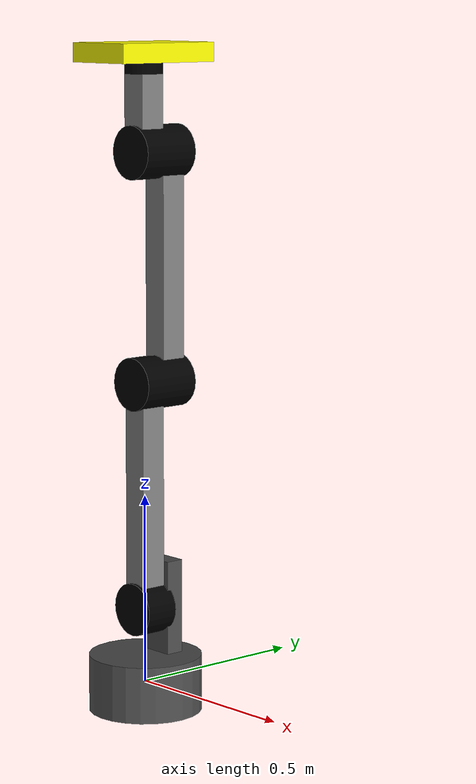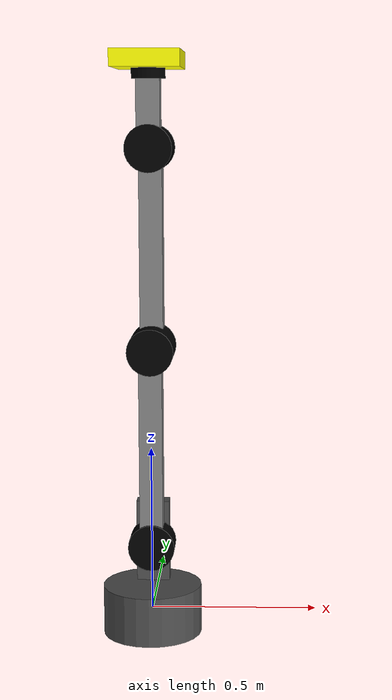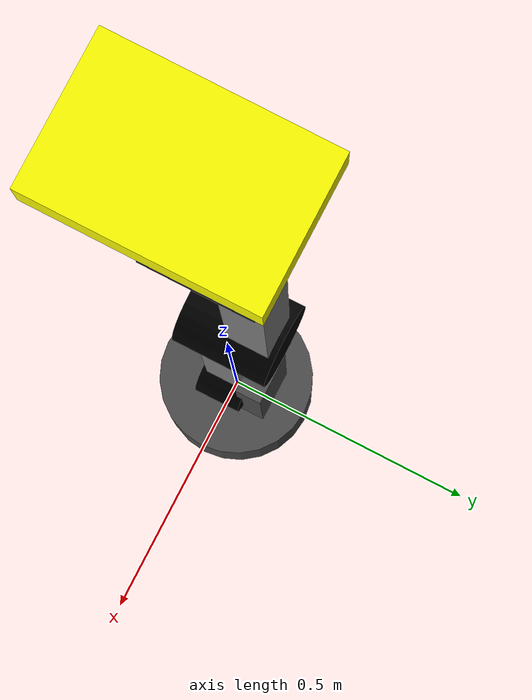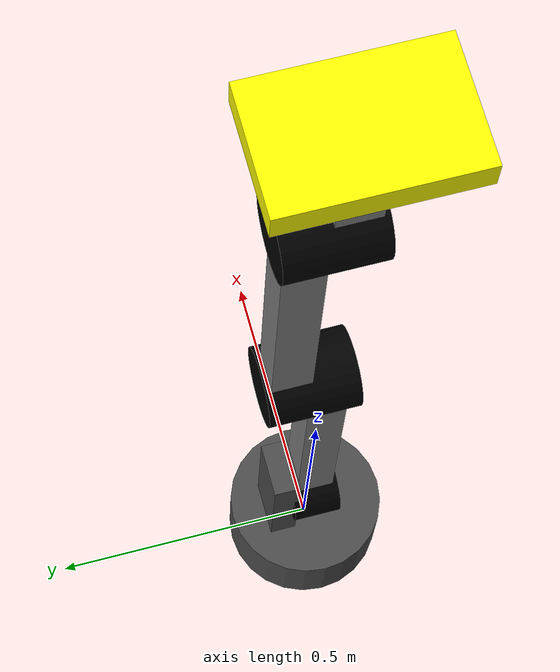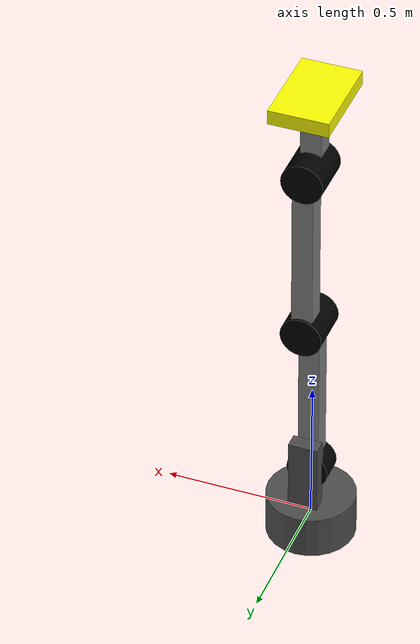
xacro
<?xml version="1.0"?>
<robot xmlns:xacro="http://www.ros.org/wiki/xacro" name="yuna_arm">

  <xacro:property name="pi" value="3.14159265" />

  <xacro:property name="base_mass" value="20" />
  <xacro:property name="link_one_mass" value="2" />
  <xacro:property name="link_two_mass" value="4" />
  <xacro:property name="link_three_mass" value="4" />
  <xacro:property name="link_four_mass" value="2" />
  <xacro:property name="wrist_mass" value="1" />
  <xacro:property name="gripper_mass" value="2" />

  <xacro:property name="base_len" value="0.15" />
  <xacro:property name="base_rad" value="0.15" />

  <xacro:property name="link_one_length" value="0.1" />
  <xacro:property name="link_one_width" value="0.05" />
  <xacro:property name="link_one_height" value="0.25" />

  <xacro:property name="link_two_length" value="0.07" />
  <xacro:property name="link_two_width" value="0.07" />
  <xacro:property name="link_two_height" value="0.6" />

  <xacro:property name="link_three_length" value="0.07" />
  <xacro:property name="link_three_width" value="0.07" />
  <xacro:property name="link_three_height" value="0.6" />

  <xacro:property name="link_four_length" value="0.07" />
  <xacro:property name="link_four_width" value="0.07" />
  <xacro:property name="link_four_height" value="0.2" />

  <xacro:property name="wrist_len" value="0.03" />
  <xacro:property name="wrist_rad" value="0.05" />

  <xacro:property name="gripper_length" value="0.2" />
  <xacro:property name="gripper_width" value="0.3" />
  <xacro:property name="gripper_height" value="0.05" />

  <xacro:include filename="materials.xacro" />

  <link name="base_link">
    <visual>
        <origin xyz="0 0 0" rpy="0 0 0"/>
        <material name="darkgray"/>
      <geometry>
        <cylinder length="${base_len}" radius="${base_rad}"/>
      </geometry>
    </visual>

    <collision>
        <origin xyz="0 0 0" rpy="0 0 0"/>
      <geometry>
        <cylinder length="${base_len}" radius="${base_rad}"/>
      </geometry>
    </collision>

    <inertial>
        <origin xyz="0 0 0" rpy="0 0 0"/>
      <mass value="${base_mass}"/>
      <inertia ixx="1.0" ixy="0.0" ixz="0.0" iyy="1.0" iyz="0.0" izz="1.0"/>
    </inertial>
  </link>

  <joint name="base_rotational_joint" type="continuous">
    <parent link="base_link"/>
    <child link="link_one"/>
    <origin xyz="0 0 ${base_len/2}" rpy="0 0 0"/>
    <axis xyz="0 0 1"/>
  </joint>

  <link name="link_one">
    <visual>
        <origin xyz="0 ${link_one_width+((link_two_width-link_one_width)/2)} ${base_len/2+((link_one_height-base_len)/2)}" rpy="0 0 0"/>
        <material name="darkgray"/>
      <geometry>
          <box size="${link_one_length} ${link_one_width} ${link_one_height}"/>
      </geometry>
    </visual>

    <collision>
        <origin xyz="0 ${link_one_width+((link_two_width-link_one_width)/2)} ${base_len/2+((link_one_height-base_len)/2)}" rpy="0 0 0"/>
      <geometry>
        <box size="${link_one_length} ${link_one_width} ${link_one_height}"/>
      </geometry>
    </collision>

    <inertial>
        <origin xyz="0 ${link_one_width+((link_two_width-link_one_width)/2)} ${base_len/2+((link_one_height-base_len)/2)}" rpy="0 0 0"/>
        <mass value="${link_one_mass}"/>
      <inertia ixx="1.0" ixy="0.0" ixz="0.0" iyy="1.0" iyz="0.0" izz="1.0"/>
    </inertial>
  </link>

  <joint name="shoulder_joint" type="revolute">
    <parent link="link_one"/>
    <child link="link_two"/>
    <origin xyz="0 0 ${link_one_height/2}" rpy="0 0 0"/>
    <axis xyz="0 1 0"/>
    <limit lower="${-pi/2}" upper="${pi/2}" effort="10" velocity="${pi/2}"/>
  </joint>

  <link name="link_two">
    <visual>
      <origin xyz="0 0 ${link_two_height/2}" rpy="0 0 0"/>
      <material name="gray"/>
      <geometry>
        <box size="${link_two_length} ${link_two_width} ${link_two_height}"/>
      </geometry>
    </visual>

    <collision>
      <origin xyz="0 0 ${link_two_height/2}" rpy="0 0 0"/>
      <geometry>
        <box size="${link_two_length} ${link_two_width} ${link_two_height}"/>
      </geometry>
    </collision>

    <inertial>
      <origin xyz="0 0 ${link_two_height/2}" rpy="0 0 0"/>
      <mass value="${link_two_mass}"/>
      <inertia ixx="1.0" ixy="0.0" ixz="0.0" iyy="1.0" iyz="0.0" izz="1.0"/>
    </inertial>
  </link>

  <joint name="elbow_joint" type="continuous">
    <parent link="link_two"/>
    <child link="link_three"/>
    <origin xyz="0 0 ${link_two_height}" rpy="0 0 0"/>
    <axis xyz="0 1 0"/>
    <limit lower="${-3*pi/4}" upper="${3*pi/4}" effort="10" velocity="${pi/2}"/>
  </joint>

  <link name="link_three">
    <visual>
        <origin xyz="0 ${link_three_width} ${link_three_height/2}" rpy="0 0 0"/>
        <material name="gray"/>
      <geometry>
        <box size="${link_three_length} ${link_three_width} ${link_three_height}"/>
      </geometry>
    </visual>

    <collision>
        <origin xyz="0 ${link_three_width} ${link_three_height/2}" rpy="0 0 0"/>
      <geometry>
        <box size="${link_three_length} ${link_three_width} ${link_three_height}"/>
      </geometry>
    </collision>

    <inertial>
        <origin xyz="0 ${link_three_width} ${link_three_height/2}" rpy="0 0 0"/>
        <mass value="${link_three_mass}"/>
      <inertia ixx="1.0" ixy="0.0" ixz="0.0" iyy="1.0" iyz="0.0" izz="1.0"/>
    </inertial>
  </link>

  <joint name="wrist_joint_rot" type="continuous">
    <parent link="link_three"/>
    <child link="link_four"/>
    <origin xyz="0 0 ${link_three_height}" rpy="0 0 0"/>
    <axis xyz="0 1 0"/>
    <limit lower="${-3*pi/4}" upper="${3*pi/4}" effort="10" velocity="${pi/2}"/>
  </joint>

  <link name="link_four">
    <visual>
        <origin xyz="0 0 ${link_four_height/2}" rpy="0 0 0"/>
        <material name="gray"/>
      <geometry>
        <box size="${link_four_length} ${link_four_width} ${link_four_height}"/>
      </geometry>
    </visual>

    <collision>
        <origin xyz="0 0 ${link_four_height/2}" rpy="0 0 0"/>
      <geometry>
        <box size="${link_four_length} ${link_four_width} ${link_four_height}"/>
      </geometry>
    </collision>

    <inertial>
        <origin xyz="0 0 ${link_four_height/2}" rpy="0 0 0"/>
        <mass value="${link_four_mass}"/>
      <inertia ixx="1.0" ixy="0.0" ixz="0.0" iyy="1.0" iyz="0.0" izz="1.0"/>
    </inertial>
  </link>

  <joint name="wrist_joint" type="continuous">
    <parent link="link_four"/>
    <child link="wrist"/>
    <origin xyz="0 0 ${link_four_height}" rpy="0 0 0"/>
    <axis xyz="0 0 1"/>
  </joint>

  <link name="wrist">
    <visual>
        <origin xyz="0 0 ${wrist_len/2}" rpy="0 0 0"/>
        <material name="black"/>
      <geometry>
        <cylinder length="${wrist_len}" radius="${wrist_rad}"/>
      </geometry>
    </visual>

    <collision>
        <origin xyz="0 0 ${wrist_len/2}" rpy="0 0 0"/>
      <geometry>
        <cylinder length="${wrist_len}" radius="${wrist_rad}"/>
      </geometry>
    </collision>

    <inertial>
        <origin xyz="0 0 ${wrist_len/2}" rpy="0 0 0"/>
        <mass value="${wrist_mass}"/>
      <inertia ixx="1.0" ixy="0.0" ixz="0.0" iyy="1.0" iyz="0.0" izz="1.0"/>
    </inertial>
  </link>

  <joint name="gripper_joint" type="fixed">
    <parent link="wrist"/>
    <child link="gripper"/>
    <origin xyz="0 0 ${wrist_len}" rpy="0 0 0"/>
  </joint>

  <link name="gripper">
    <visual>
        <origin xyz="0 0 ${gripper_height/2}" rpy="0 0 0"/>
        <material name="yellow"/>
      <geometry>
          <box size="${gripper_length} ${gripper_width} ${gripper_height}"/>
      </geometry>
    </visual>

    <collision>
        <origin xyz="0 0 ${gripper_height/2}" rpy="0 0 0"/>
      <geometry>
        <box size="${gripper_length} ${gripper_width} ${gripper_height}"/>
      </geometry>
    </collision>

    <inertial>
        <origin xyz="0 0 ${gripper_height/2}" rpy="0 0 0"/>
        <mass value="${gripper_mass}"/>
      <inertia ixx="1.0" ixy="0.0" ixz="0.0" iyy="1.0" iyz="0.0" izz="1.0"/>
    </inertial>
  </link>

  <!-- CYLS -->
  <joint name="shoulder_cyl" type="fixed">
    <parent link="link_two"/>
    <child link="cyl_one"/>
    <origin xyz="0 0 0" rpy="0 0 0"/>
  </joint>

  <link name="cyl_one">
    <visual>
        <origin xyz="0 0 0" rpy="${pi/2} 0 0"/>
        <material name="black"/>
      <geometry>
        <cylinder length="${link_two_width+0.02}" radius="${link_two_width}"/>
      </geometry>
    </visual>

    <inertial>
        <origin xyz="0 0 0" rpy="${pi/2} 0 0"/>
        <mass value="${wrist_mass}"/>
      <inertia ixx="1.0" ixy="0.0" ixz="0.0" iyy="1.0" iyz="0.0" izz="1.0"/>
    </inertial>
  </link>

  <joint name="elbow_cyl" type="fixed">
    <parent link="link_three"/>
    <child link="cyl_two"/>
    <origin xyz="0 0 0" rpy="0 0 0"/>
  </joint>

  <link name="cyl_two">
    <visual>
        <origin xyz="0 ${link_two_width/2} 0" rpy="${pi/2} 0 0"/>
        <material name="black"/>
      <geometry>
        <cylinder length="${link_two_width+link_three_width+0.02}" radius="${link_three_width}"/>
      </geometry>
    </visual>

    <inertial>
        <origin xyz="0 ${link_two_width/2} 0" rpy="${pi/2} 0 0"/>
        <mass value="${wrist_mass}"/>
      <inertia ixx="1.0" ixy="0.0" ixz="0.0" iyy="1.0" iyz="0.0" izz="1.0"/>
    </inertial>
  </link>

  <joint name="wrist_cyl" type="fixed">
    <parent link="link_four"/>
    <child link="cyl_three"/>
    <origin xyz="0 0 0" rpy="0 0 0"/>
  </joint>

  <link name="cyl_three">
    <visual>
        <origin xyz="0 ${link_four_width/2} 0" rpy="${pi/2} 0 0"/>
        <material name="black"/>
      <geometry>
        <cylinder length="${link_three_width+link_four_width+0.02}" radius="${link_four_width}"/>
      </geometry>
    </visual>

    <inertial>
        <origin xyz="0 ${link_three_width/2} 0" rpy="${pi/2} 0 0"/>
        <mass value="${wrist_mass}"/>
      <inertia ixx="1.0" ixy="0.0" ixz="0.0" iyy="1.0" iyz="0.0" izz="1.0"/>
    </inertial>
  </link>

  <gazebo reference="base_link">
    <material>Gazebo/DarkGrey</material>
  </gazebo>
  <gazebo reference="link_one">
    <material>Gazebo/DarkGrey</material>
  </gazebo>
  <gazebo reference="link_two">
    <material>Gazebo/Grey</material>
  </gazebo>
  <gazebo reference="link_three">
    <material>Gazebo/Grey</material>
  </gazebo>
  <gazebo reference="link_four">
    <material>Gazebo/Grey</material>
  </gazebo>

  <gazebo reference="cyl_one">
    <material>Gazebo/FlatBlack</material>
  </gazebo>
  <gazebo reference="cyl_two">
    <material>Gazebo/FlatBlack</material>
  </gazebo>
  <gazebo reference="cyl_three">
    <material>Gazebo/FlatBlack</material>
  </gazebo>

  <gazebo reference="wrist">
    <material>Gazebo/FlatBlack</material>
  </gazebo>
  <gazebo reference="gripper">
    <material>Gazebo/ZincYellow</material>
  </gazebo>

</robot>

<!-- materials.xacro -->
<robot>
  <material name="darkgray">
    <color rgba="0.3 0.3 0.3 1.0"/>
  </material>
  <material name="gray">
    <color rgba="0.5 0.5 0.5 1.0"/>
  </material>
  <material name="black">
    <color rgba="0.0 0.0 0.0 1.0"/>
  </material>
  <material name="yellow">
    <color rgba="1.0 1.0 0.0 1.0"/>
  </material>
</robot>
